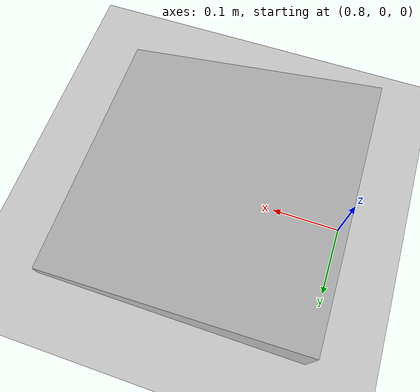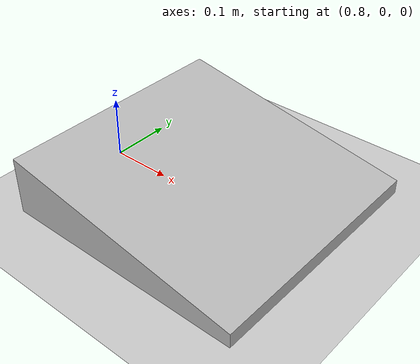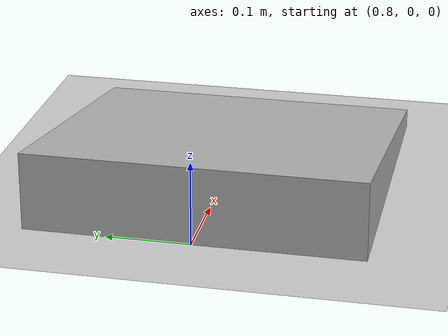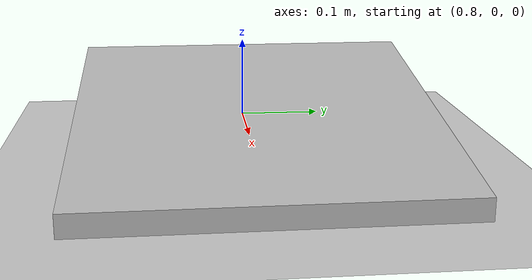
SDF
<?xml version="1.0" ?>
<sdf version="1.4">
  <world name="default">
    <physics type="ode">
      <gravity>0 0 -9.81</gravity>
      <ode>
        <solver>
          <type>quick</type>
          <iters>50</iters>
          <sor>1.4</sor>
        </solver>
        <constraints>
          <cfm>0.0</cfm>
          <erp>0.2</erp>
          <contact_max_correcting_vel>100.0</contact_max_correcting_vel>
          <contact_surface_layer>0.0</contact_surface_layer>
        </constraints>
      </ode>
      <real_time_update_rate>1000</real_time_update_rate>
      <max_step_size>0.001</max_step_size>
    </physics>
    <!-- A global light source -->
    <include>
      <uri>model://sun</uri>
    </include>
    <!-- A ground plane -->
    <include>
      <uri>model://ground_plane</uri>
    </include>
    <!-- A bunch of chairs -->
    <include>
          <uri>model://Y_positive_10_lifted</uri>
      <pose>1.0 0 0 0 0 0.0</pose>
    </include>
  </world>
</sdf>

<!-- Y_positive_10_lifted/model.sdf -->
<sdf version="1.4">
  <model name="Y_positive_10_lifted">
    <link name="link">
      <pose>0 0 0 0 0 0</pose>
      <collision name="collision">
        <geometry>
          <mesh>
            <uri>model://Y_positive_10_lifted/meshes/10_degree_slope_lifted.stl</uri>
            <scale>0.00999 0.00999 0.00999</scale>
          </mesh>
        </geometry>
      </collision>
      <visual name="visual">
        <geometry>
          <mesh>
            <uri>model://Y_positive_10_lifted/meshes/10_degree_slope_lifted.stl</uri>
            <scale>0.00999 0.00999 0.00999</scale>
          </mesh>
        </geometry>
      </visual>
    </link>
  </model>
</sdf>
